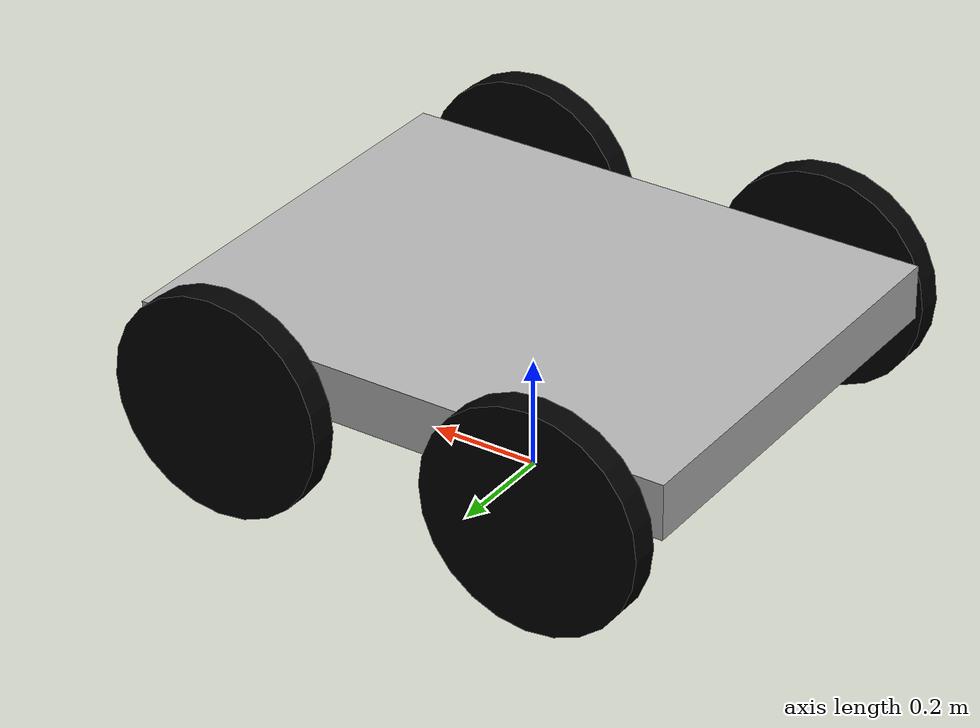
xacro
<?xml version="1.0"?>
<robot xmlns:xacro="http://www.ros.org/wiki/xacro" name="ult_robot">

  <link name="base_footprint"/>

  <link name="base_link">
    <visual>
      <geometry>
        <box size="1.0 0.8 0.1"/>
      </geometry>
      <material name="LightGrey">
        <color rgba="0.7 0.7 0.7 1.0"/>
      </material>
    </visual>
    <collision>
      <geometry>
        <box size="1.0 0.8 0.1"/>
      </geometry>
    </collision>
    <inertial>
      <mass value="2.0"/>
      <origin xyz="0.0 0.0 -0.05" rpy="0.0 0.0 0.0"/>
      <inertia ixx="0.1667" ixy="0.0" ixz="0.0" iyy="0.1333" iyz="0.0" izz="0.2667"/>
    </inertial>
  </link>

  <joint name="base_joint" type="fixed">
    <origin xyz="0.0 0.0 0.3" rpy="0.0 0.0 0.0"/>
    <parent link="base_footprint"/>
    <child link="base_link"/>
  </joint>

  <!-- Wheel Macro -->
  <xacro:macro name="wheel" params="name x y">
    <link name="wheel_${name}_link">
      <visual>
        <geometry>
          <cylinder radius="0.2" length="0.05"/>
        </geometry>
        <material name="Black">
          <color rgba="0.0 0.0 0.0 1.0"/>
        </material>
      </visual>
      <collision>
        <geometry>
          <cylinder radius="0.2" length="0.05"/>
        </geometry>
      </collision>
      <inertial>
        <mass value="0.55"/>
        <origin xyz="0.0 0.0 0.0" rpy="1.570796326795 0.0 0.0"/>
        <inertia ixx="0.01" ixy="0.0" ixz="0.0" iyy="0.01" iyz="0.0" izz="0.01"/>
      </inertial>
    </link>

    <joint name="wheel_${name}_joint" type="continuous">
      <origin xyz="${x} ${y} -0.05" rpy="1.570796326795 0.0 0.0"/>
      <parent link="base_link"/>
      <child link="wheel_${name}_link"/>
      <axis xyz="0.0 0.0 1.0"/>
    </joint>
  </xacro:macro>

  <!-- Wheels -->
  <xacro:wheel name="front_right" x="0.3" y="0.45"/>
  <xacro:wheel name="rear_right" x="-0.3" y="0.45"/>
  <xacro:wheel name="rear_left" x="-0.3" y="-0.45"/>
  <xacro:wheel name="front_left" x="0.3" y="-0.45"/>
</robot>
